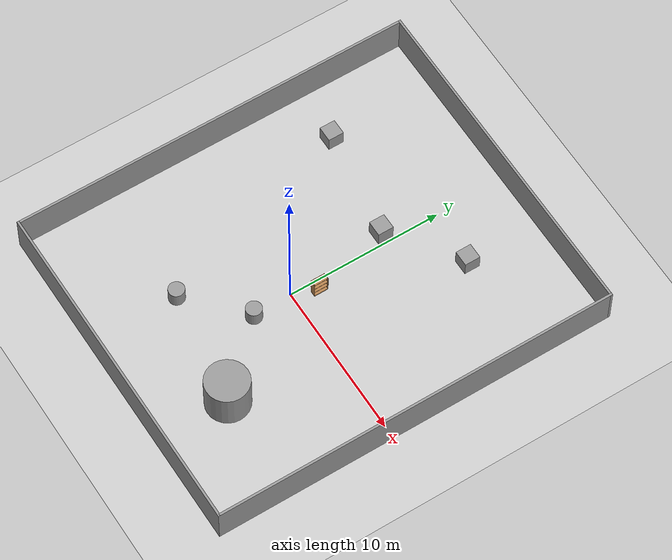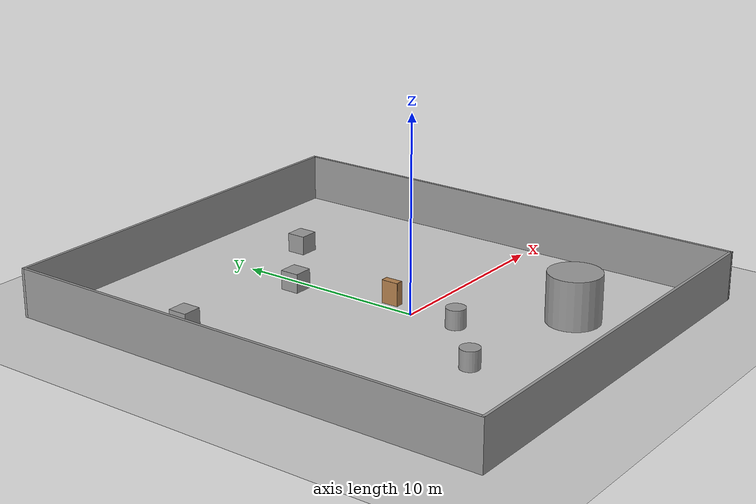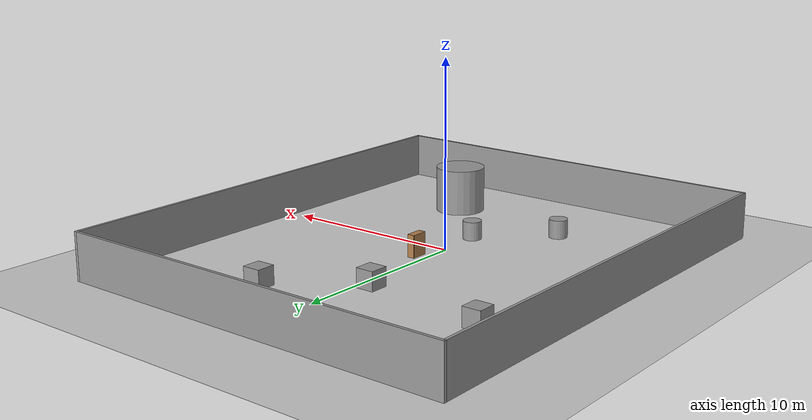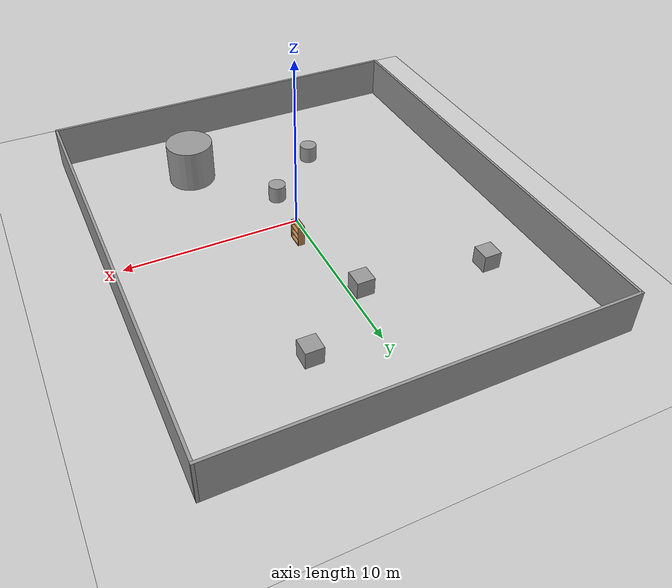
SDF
<sdf version='1.7'>
  <world name='default'>
    <light name='sun' type='directional'>
      <cast_shadows>0</cast_shadows>
      <pose>0 0 10 0 -0 0</pose>
      <diffuse>0.8 0.8 0.8 1</diffuse>
      <specular>0.2 0.2 0.2 1</specular>
      <attenuation>
        <range>1000</range>
        <constant>0.9</constant>
        <linear>0.01</linear>
        <quadratic>0.001</quadratic>
      </attenuation>
      <direction>-0.5 0.1 -0.9</direction>
      <spot>
        <inner_angle>0</inner_angle>
        <outer_angle>0</outer_angle>
        <falloff>0</falloff>
      </spot>
    </light>
    <model name='ground_plane'>
      <static>1</static>
      <link name='link'>
        <collision name='collision'>
          <geometry>
            <plane>
              <normal>0 0 1</normal>
              <size>100 100</size>
            </plane>
          </geometry>
          <surface>
            <contact>
              <collide_bitmask>65535</collide_bitmask>
              <ode/>
            </contact>
            <friction>
              <ode>
                <mu>100</mu>
                <mu2>50</mu2>
              </ode>
              <torsional>
                <ode/>
              </torsional>
            </friction>
            <bounce/>
          </surface>
          <max_contacts>10</max_contacts>
        </collision>
        <visual name='visual'>
          <cast_shadows>0</cast_shadows>
          <geometry>
            <plane>
              <normal>0 0 1</normal>
              <size>100 100</size>
            </plane>
          </geometry>
          <material>
            <script>
              <uri>file://media/materials/scripts/gazebo.material</uri>
              <name>Gazebo/Grey</name>
            </script>
          </material>
        </visual>
        <self_collide>0</self_collide>
        <enable_wind>0</enable_wind>
        <kinematic>0</kinematic>
      </link>
    </model>
    <gravity>0 0 -9.8</gravity>
    <physics type='ode'>
      <max_step_size>0.001</max_step_size>
      <real_time_factor>1</real_time_factor>
      <real_time_update_rate>1000</real_time_update_rate>
    </physics>
    <scene>
      <ambient>0.4 0.4 0.4 1</ambient>
      <background>0.7 0.7 0.7 1</background>
      <shadows>0</shadows>
      <origin_visual>0</origin_visual>
    </scene>
    <audio>
      <device>default</device>
    </audio>
    <spherical_coordinates>
      <surface_model>EARTH_WGS84</surface_model>
      <latitude_deg>0</latitude_deg>
      <longitude_deg>0</longitude_deg>
      <elevation>0</elevation>
      <heading_deg>0</heading_deg>
    </spherical_coordinates>
    <model name='bookshelf'>
      <static>1</static>
      <link name='link'>
        <inertial>
          <mass>1</mass>
        </inertial>
        <visual name='visual1'>
          <pose>0 0.005 0.6 0 -0 0</pose>
          <geometry>
            <box>
              <size>0.9 0.01 1.2</size>
            </box>
          </geometry>
          <material>
            <script>
              <uri>file://media/materials/scripts/gazebo.material</uri>
              <name>Gazebo/Wood</name>
            </script>
          </material>
        </visual>
        <visual name='visual2'>
          <pose>0.45 -0.195 0.6 0 -0 0</pose>
          <geometry>
            <box>
              <size>0.02 0.4 1.2</size>
            </box>
          </geometry>
          <material>
            <script>
              <uri>file://media/materials/scripts/gazebo.material</uri>
              <name>Gazebo/Wood</name>
            </script>
          </material>
        </visual>
        <visual name='visual3'>
          <pose>-0.45 -0.195 0.6 0 -0 0</pose>
          <geometry>
            <box>
              <size>0.02 0.4 1.2</size>
            </box>
          </geometry>
          <material>
            <script>
              <uri>file://media/materials/scripts/gazebo.material</uri>
              <name>Gazebo/Wood</name>
            </script>
          </material>
        </visual>
        <visual name='visual4'>
          <pose>0 -0.195 0.03 0 -0 0</pose>
          <geometry>
            <box>
              <size>0.88 0.4 0.06</size>
            </box>
          </geometry>
          <material>
            <script>
              <uri>file://media/materials/scripts/gazebo.material</uri>
              <name>Gazebo/Wood</name>
            </script>
          </material>
        </visual>
        <visual name='visual5'>
          <pose>0 -0.195 1.19 0 -0 0</pose>
          <geometry>
            <box>
              <size>0.88 0.4 0.02</size>
            </box>
          </geometry>
          <material>
            <script>
              <uri>file://media/materials/scripts/gazebo.material</uri>
              <name>Gazebo/Wood</name>
            </script>
          </material>
        </visual>
        <visual name='visual6'>
          <pose>0 -0.195 0.43 0 -0 0</pose>
          <geometry>
            <box>
              <size>0.88 0.4 0.02</size>
            </box>
          </geometry>
          <material>
            <script>
              <uri>file://media/materials/scripts/gazebo.material</uri>
              <name>Gazebo/Wood</name>
            </script>
          </material>
        </visual>
        <visual name='visual7'>
          <pose>0 -0.195 0.8 0 -0 0</pose>
          <geometry>
            <box>
              <size>0.88 0.4 0.02</size>
            </box>
          </geometry>
          <material>
            <script>
              <uri>file://media/materials/scripts/gazebo.material</uri>
              <name>Gazebo/Wood</name>
            </script>
          </material>
        </visual>
        <self_collide>0</self_collide>
        <enable_wind>0</enable_wind>
        <kinematic>0</kinematic>
      </link>
      <pose>0.43 1.58 0 0 -0 1.57611</pose>
    </model>
    <gui fullscreen='0'>
      <camera name='user_camera'>
        <pose>18.7727 7.07862 37.2122 0 1.1502 -3.11206</pose>
        <view_controller>orbit</view_controller>
        <projection_type>perspective</projection_type>
      </camera>
    </gui>
    <model name='small_room'>
      <pose>-0.133591 1.6178 0 0 -0 0</pose>
      <link name='Wall_37'>
        <collision name='Wall_37_Collision'>
          <geometry>
            <box>
              <size>26 0.15 2.5</size>
            </box>
          </geometry>
          <pose>0 0 1.25 0 -0 0</pose>
          <max_contacts>10</max_contacts>
          <surface>
            <contact>
              <ode/>
            </contact>
            <bounce/>
            <friction>
              <torsional>
                <ode/>
              </torsional>
              <ode/>
            </friction>
          </surface>
        </collision>
        <visual name='Wall_37_Visual'>
          <pose>0 0 1.25 0 -0 0</pose>
          <geometry>
            <box>
              <size>26 0.15 2.5</size>
            </box>
          </geometry>
          <material>
            <script>
              <uri>file://media/materials/scripts/gazebo.material</uri>
              <name>Gazebo/Grey</name>
            </script>
            <ambient>1 1 1 1</ambient>
          </material>
          <meta>
            <layer>0</layer>
          </meta>
        </visual>
        <pose>-10.925 -0 0 0 -0 -1.5708</pose>
        <self_collide>0</self_collide>
        <enable_wind>0</enable_wind>
        <kinematic>0</kinematic>
      </link>
      <link name='Wall_38'>
        <collision name='Wall_38_Collision'>
          <geometry>
            <box>
              <size>22 0.15 2.5</size>
            </box>
          </geometry>
          <pose>0 0 1.25 0 -0 0</pose>
          <max_contacts>10</max_contacts>
          <surface>
            <contact>
              <ode/>
            </contact>
            <bounce/>
            <friction>
              <torsional>
                <ode/>
              </torsional>
              <ode/>
            </friction>
          </surface>
        </collision>
        <visual name='Wall_38_Visual'>
          <pose>0 0 1.25 0 -0 0</pose>
          <geometry>
            <box>
              <size>22 0.15 2.5</size>
            </box>
          </geometry>
          <material>
            <script>
              <uri>file://media/materials/scripts/gazebo.material</uri>
              <name>Gazebo/Grey</name>
            </script>
            <ambient>1 1 1 1</ambient>
          </material>
          <meta>
            <layer>0</layer>
          </meta>
        </visual>
        <pose>0 -12.925 0 0 -0 0</pose>
        <self_collide>0</self_collide>
        <enable_wind>0</enable_wind>
        <kinematic>0</kinematic>
      </link>
      <link name='Wall_39'>
        <collision name='Wall_39_Collision'>
          <geometry>
            <box>
              <size>26 0.15 2.5</size>
            </box>
          </geometry>
          <pose>0 0 1.25 0 -0 0</pose>
          <max_contacts>10</max_contacts>
          <surface>
            <contact>
              <ode/>
            </contact>
            <bounce/>
            <friction>
              <torsional>
                <ode/>
              </torsional>
              <ode/>
            </friction>
          </surface>
        </collision>
        <visual name='Wall_39_Visual'>
          <pose>0 0 1.25 0 -0 0</pose>
          <geometry>
            <box>
              <size>26 0.15 2.5</size>
            </box>
          </geometry>
          <material>
            <script>
              <uri>file://media/materials/scripts/gazebo.material</uri>
              <name>Gazebo/Grey</name>
            </script>
            <ambient>1 1 1 1</ambient>
          </material>
          <meta>
            <layer>0</layer>
          </meta>
        </visual>
        <pose>10.925 -0 0 0 -0 1.5708</pose>
        <self_collide>0</self_collide>
        <enable_wind>0</enable_wind>
        <kinematic>0</kinematic>
      </link>
      <link name='Wall_40'>
        <collision name='Wall_40_Collision'>
          <geometry>
            <box>
              <size>22 0.15 2.5</size>
            </box>
          </geometry>
          <pose>0 0 1.25 0 -0 0</pose>
          <max_contacts>10</max_contacts>
          <surface>
            <contact>
              <ode/>
            </contact>
            <bounce/>
            <friction>
              <torsional>
                <ode/>
              </torsional>
              <ode/>
            </friction>
          </surface>
        </collision>
        <visual name='Wall_40_Visual'>
          <pose>0 0 1.25 0 -0 0</pose>
          <geometry>
            <box>
              <size>22 0.15 2.5</size>
            </box>
          </geometry>
          <material>
            <script>
              <uri>file://media/materials/scripts/gazebo.material</uri>
              <name>Gazebo/Grey</name>
            </script>
            <ambient>1 1 1 1</ambient>
          </material>
          <meta>
            <layer>0</layer>
          </meta>
        </visual>
        <pose>0 12.925 0 0 -0 3.14159</pose>
        <self_collide>0</self_collide>
        <enable_wind>0</enable_wind>
        <kinematic>0</kinematic>
      </link>
      <static>1</static>
    </model>
    <magnetic_field>6e-06 2.3e-05 -4.2e-05</magnetic_field>
    <atmosphere type='adiabatic'/>
    <wind/>
    <model name='unit_cylinder'>
      <pose>0.121399 -2.50056 0.5 0 -0 0</pose>
      <link name='link'>
        <inertial>
          <mass>1</mass>
          <inertia>
            <ixx>0.145833</ixx>
            <ixy>0</ixy>
            <ixz>0</ixz>
            <iyy>0.145833</iyy>
            <iyz>0</iyz>
            <izz>0.125</izz>
          </inertia>
          <pose>0 0 0 0 -0 0</pose>
        </inertial>
        <collision name='collision'>
          <geometry>
            <cylinder>
              <radius>0.5</radius>
              <length>1</length>
            </cylinder>
          </geometry>
          <max_contacts>10</max_contacts>
          <surface>
            <contact>
              <ode/>
            </contact>
            <bounce/>
            <friction>
              <torsional>
                <ode/>
              </torsional>
              <ode/>
            </friction>
          </surface>
        </collision>
        <visual name='visual'>
          <geometry>
            <cylinder>
              <radius>0.5</radius>
              <length>1</length>
            </cylinder>
          </geometry>
          <material>
            <script>
              <name>Gazebo/Grey</name>
              <uri>file://media/materials/scripts/gazebo.material</uri>
            </script>
          </material>
        </visual>
        <self_collide>0</self_collide>
        <enable_wind>0</enable_wind>
        <kinematic>0</kinematic>
      </link>
    </model>
    <model name='unit_box'>
      <pose>-0.654514 6.57786 0.5 0 -0 0</pose>
      <link name='link'>
        <inertial>
          <mass>1</mass>
          <inertia>
            <ixx>0.166667</ixx>
            <ixy>0</ixy>
            <ixz>0</ixz>
            <iyy>0.166667</iyy>
            <iyz>0</iyz>
            <izz>0.166667</izz>
          </inertia>
          <pose>0 0 0 0 -0 0</pose>
        </inertial>
        <collision name='collision'>
          <geometry>
            <box>
              <size>1 1 1</size>
            </box>
          </geometry>
          <max_contacts>10</max_contacts>
          <surface>
            <contact>
              <ode/>
            </contact>
            <bounce/>
            <friction>
              <torsional>
                <ode/>
              </torsional>
              <ode/>
            </friction>
          </surface>
        </collision>
        <visual name='visual'>
          <geometry>
            <box>
              <size>1 1 1</size>
            </box>
          </geometry>
          <material>
            <script>
              <name>Gazebo/Grey</name>
              <uri>file://media/materials/scripts/gazebo.material</uri>
            </script>
          </material>
        </visual>
        <self_collide>0</self_collide>
        <enable_wind>0</enable_wind>
        <kinematic>0</kinematic>
      </link>
    </model>
    <model name='unit_cylinder_0'>
      <pose>-3.29031 -5.5623 0.5 0 -0 0</pose>
      <link name='link'>
        <inertial>
          <mass>1</mass>
          <inertia>
            <ixx>0.145833</ixx>
            <ixy>0</ixy>
            <ixz>0</ixz>
            <iyy>0.145833</iyy>
            <iyz>0</iyz>
            <izz>0.125</izz>
          </inertia>
          <pose>0 0 0 0 -0 0</pose>
        </inertial>
        <collision name='collision'>
          <geometry>
            <cylinder>
              <radius>0.5</radius>
              <length>1</length>
            </cylinder>
          </geometry>
          <max_contacts>10</max_contacts>
          <surface>
            <contact>
              <ode/>
            </contact>
            <bounce/>
            <friction>
              <torsional>
                <ode/>
              </torsional>
              <ode/>
            </friction>
          </surface>
        </collision>
        <visual name='visual'>
          <geometry>
            <cylinder>
              <radius>0.5</radius>
              <length>1</length>
            </cylinder>
          </geometry>
          <material>
            <script>
              <name>Gazebo/Grey</name>
              <uri>file://media/materials/scripts/gazebo.material</uri>
            </script>
          </material>
        </visual>
        <self_collide>0</self_collide>
        <enable_wind>0</enable_wind>
        <kinematic>0</kinematic>
      </link>
    </model>
    <model name='unit_box_0'>
      <pose>3.64964 9.69064 0.5 0 -0 0</pose>
      <link name='link'>
        <inertial>
          <mass>1</mass>
          <inertia>
            <ixx>0.166667</ixx>
            <ixy>0</ixy>
            <ixz>0</ixz>
            <iyy>0.166667</iyy>
            <iyz>0</iyz>
            <izz>0.166667</izz>
          </inertia>
          <pose>0 0 0 0 -0 0</pose>
        </inertial>
        <collision name='collision'>
          <geometry>
            <box>
              <size>1 1 1</size>
            </box>
          </geometry>
          <max_contacts>10</max_contacts>
          <surface>
            <contact>
              <ode/>
            </contact>
            <bounce/>
            <friction>
              <torsional>
                <ode/>
              </torsional>
              <ode/>
            </friction>
          </surface>
        </collision>
        <visual name='visual'>
          <geometry>
            <box>
              <size>1 1 1</size>
            </box>
          </geometry>
          <material>
            <script>
              <name>Gazebo/Grey</name>
              <uri>file://media/materials/scripts/gazebo.material</uri>
            </script>
          </material>
        </visual>
        <self_collide>0</self_collide>
        <enable_wind>0</enable_wind>
        <kinematic>0</kinematic>
      </link>
    </model>
    <model name='unit_box_1'>
      <pose>-7.57719 7.59612 0.5 0 -0 0</pose>
      <link name='link'>
        <inertial>
          <mass>1</mass>
          <inertia>
            <ixx>0.166667</ixx>
            <ixy>0</ixy>
            <ixz>0</ixz>
            <iyy>0.166667</iyy>
            <iyz>0</iyz>
            <izz>0.166667</izz>
          </inertia>
          <pose>0 0 0 0 -0 0</pose>
        </inertial>
        <collision name='collision'>
          <geometry>
            <box>
              <size>1 1 1</size>
            </box>
          </geometry>
          <max_contacts>10</max_contacts>
          <surface>
            <contact>
              <ode/>
            </contact>
            <bounce/>
            <friction>
              <torsional>
                <ode/>
              </torsional>
              <ode/>
            </friction>
          </surface>
        </collision>
        <visual name='visual'>
          <geometry>
            <box>
              <size>1 1 1</size>
            </box>
          </geometry>
          <material>
            <script>
              <name>Gazebo/Grey</name>
              <uri>file://media/materials/scripts/gazebo.material</uri>
            </script>
          </material>
        </visual>
        <self_collide>0</self_collide>
        <enable_wind>0</enable_wind>
        <kinematic>0</kinematic>
      </link>
    </model>
    <model name='unit_cylinder_1_clone'>
      <pose>3.98185 -6.61014 1.25333 0 -0 3e-06</pose>
      <link name='link'>
        <inertial>
          <mass>1</mass>
          <inertia>
            <ixx>0.145833</ixx>
            <ixy>0</ixy>
            <ixz>0</ixz>
            <iyy>0.145833</iyy>
            <iyz>0</iyz>
            <izz>0.125</izz>
          </inertia>
          <pose>0 0 0 0 -0 0</pose>
        </inertial>
        <collision name='collision'>
          <geometry>
            <cylinder>
              <radius>1.35468</radius>
              <length>2.50666</length>
            </cylinder>
          </geometry>
          <max_contacts>10</max_contacts>
          <surface>
            <contact>
              <ode/>
            </contact>
            <bounce/>
            <friction>
              <torsional>
                <ode/>
              </torsional>
              <ode/>
            </friction>
          </surface>
        </collision>
        <visual name='visual'>
          <geometry>
            <cylinder>
              <radius>1.35468</radius>
              <length>2.50666</length>
            </cylinder>
          </geometry>
          <material>
            <script>
              <name>Gazebo/Grey</name>
              <uri>file://media/materials/scripts/gazebo.material</uri>
            </script>
          </material>
        </visual>
        <self_collide>0</self_collide>
        <enable_wind>0</enable_wind>
        <kinematic>0</kinematic>
      </link>
    </model>
    <plugin name="gazebo_ros_state" filename="libgazebo_ros_state.so">
      <ros>
        <namespace>/gazebo</namespace>
      </ros>
      <update_rate>1.0</update_rate>
    </plugin>
  </world>
</sdf>
